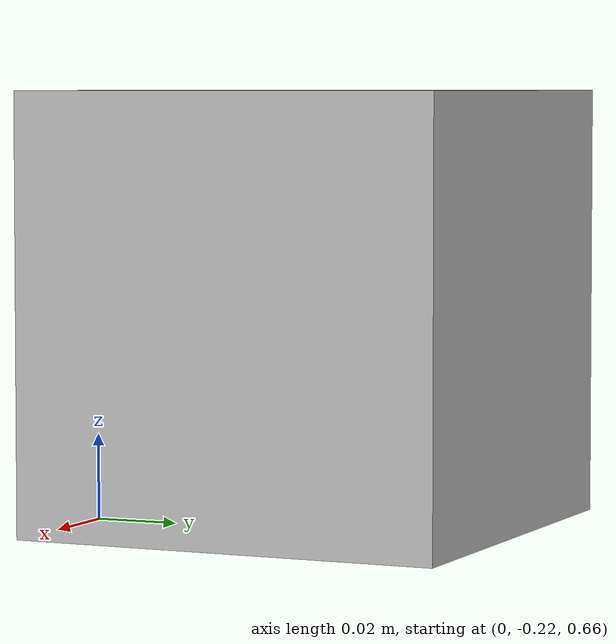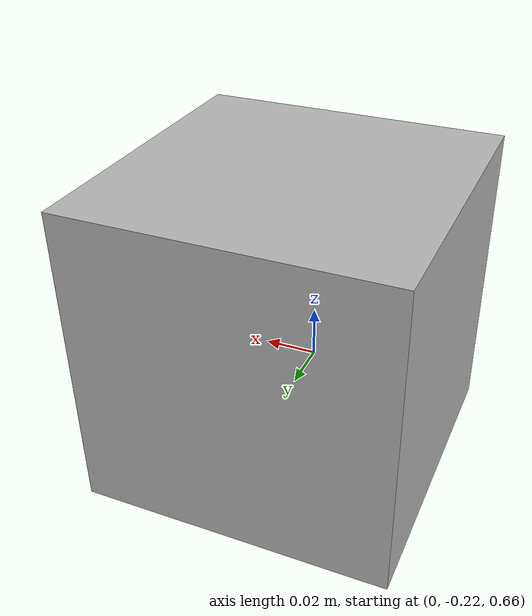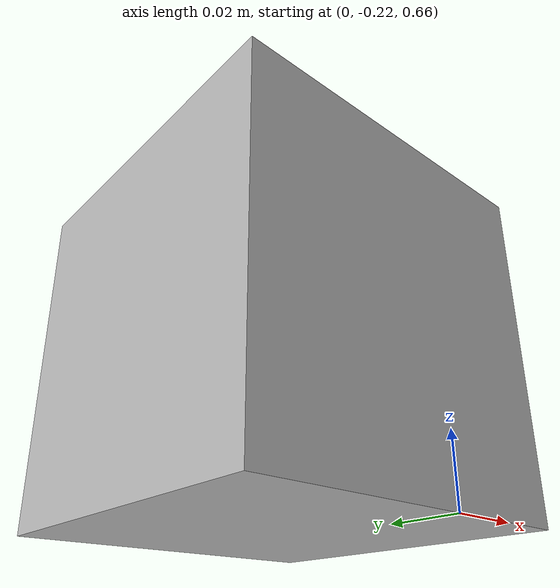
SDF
<?xml version="1.0" ?>
<sdf version="1.5">
  <model name="camera">
    <pose>-0.011884 -0.170463 0.709995 0.000031 0.000130 -1.578962</pose>
    <link name="link">
      <inertial>
        <mass>0.1</mass>
        <inertia>
          <ixx>0.000166667</ixx>
          <iyy>0.000166667</iyy>
          <izz>0.000166667</izz>
        </inertia>
      </inertial>
      <collision name="collision">
        <geometry>
          <box>
            <size>0.1 0.1 0.1</size>
          </box>
        </geometry>
      </collision>
      <visual name="visual">
        <geometry>
          <box>
            <size>0.1 0.1 0.1</size>
          </box>
        </geometry>
      </visual>
      <sensor name="camera" type="camera">
        <camera>
          <horizontal_fov>1.047</horizontal_fov>
          <image>
            <width>1024</width>
            <height>768</height>
          </image>
          <clip>
            <near>0.1</near>
            <far>100</far>
          </clip>
        </camera>
        <always_on>1</always_on>
        <update_rate>30</update_rate>
        <visualize>true</visualize>
      </sensor>
    </link>
    <plugin name="camera_controller" filename="libgazebo_ros_camera.so">
        <alwaysOn>true</alwaysOn>
        <updateRate>30.0</updateRate>
        <cameraName>robarm/camera</cameraName>
        <imageTopicName>mara_camera</imageTopicName>
        <cameraInfoTopicName>camera_info</cameraInfoTopicName>
        <frameName>camera_link</frameName>
        <hackBaseline>0.07</hackBaseline>
        <distortionK1>0.0</distortionK1>
        <distortionK2>0.0</distortionK2>
        <distortionK3>0.0</distortionK3>
        <distortionT1>0.0</distortionT1>
        <distortionT2>0.0</distortionT2>
     </plugin>
  </model>
</sdf>
